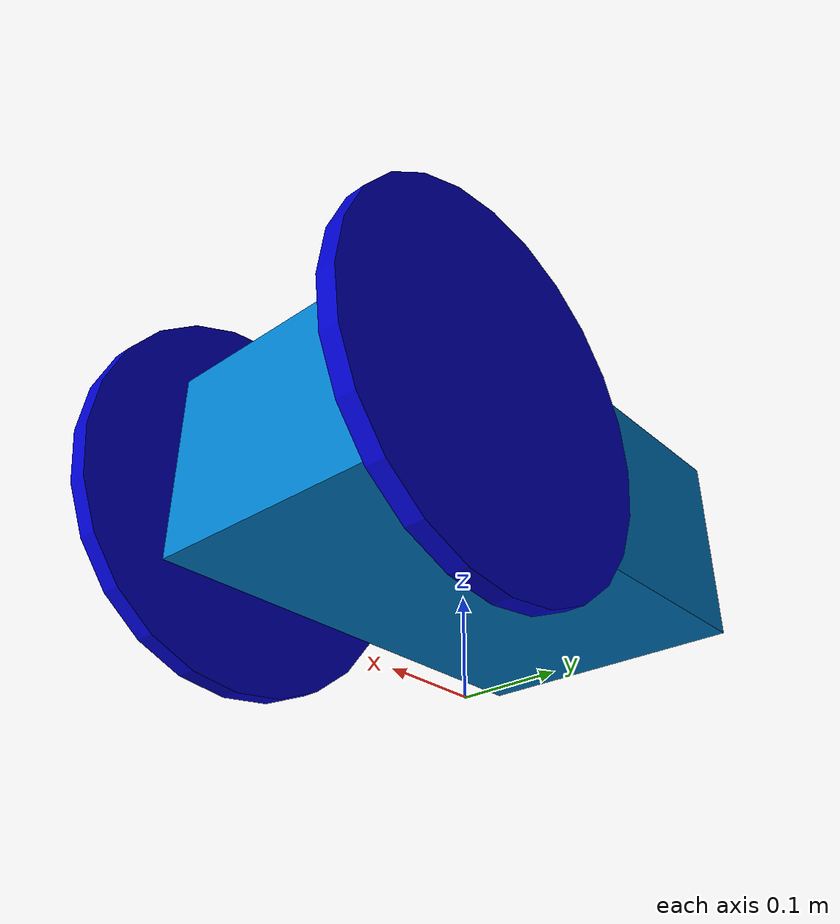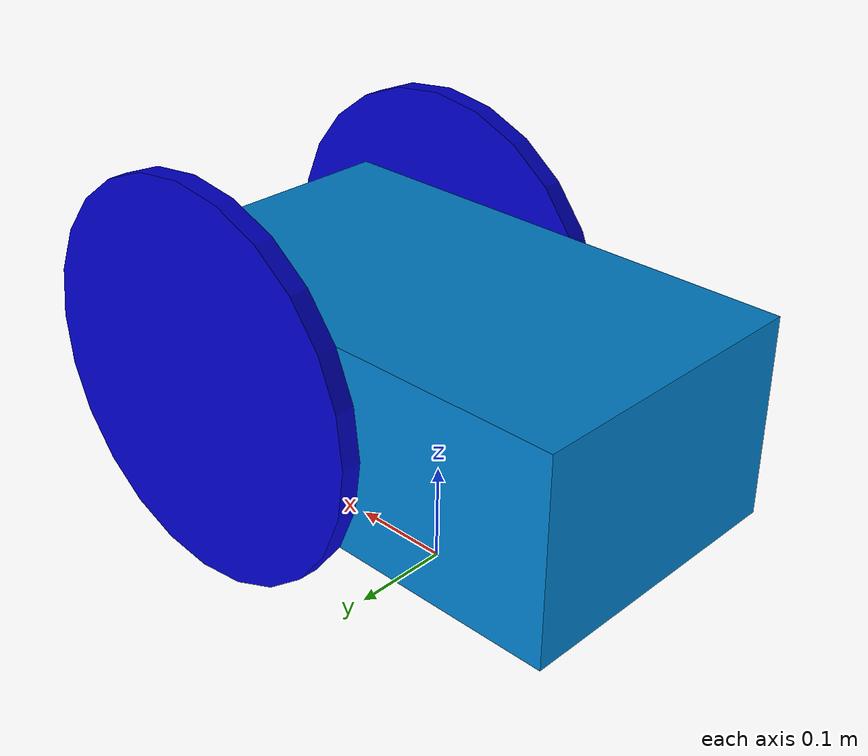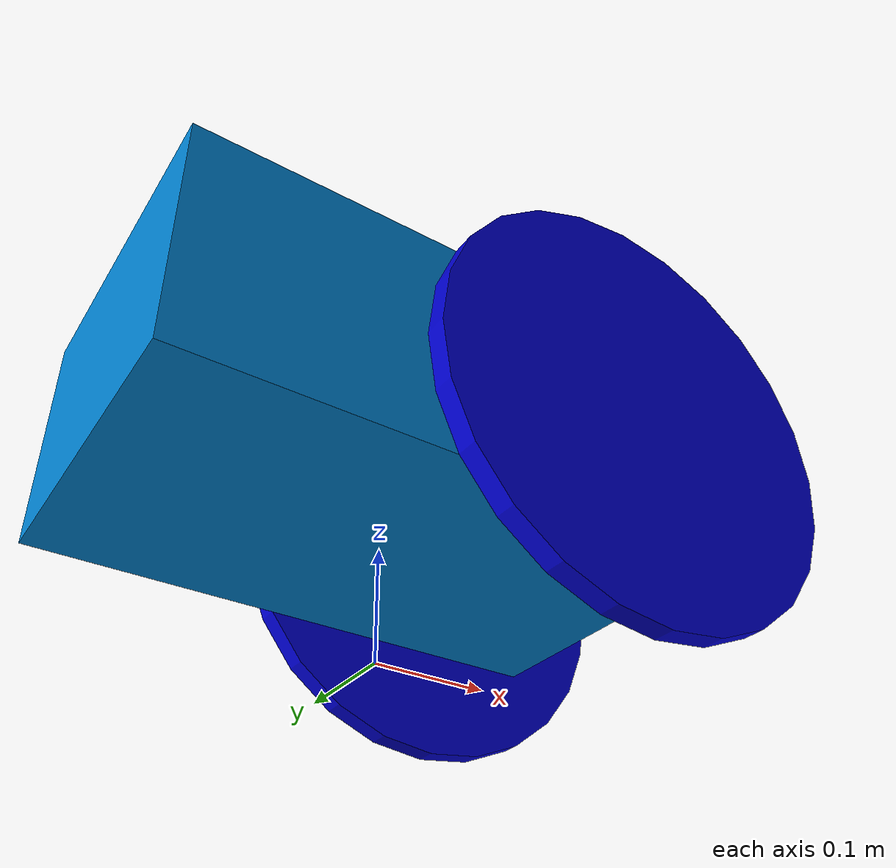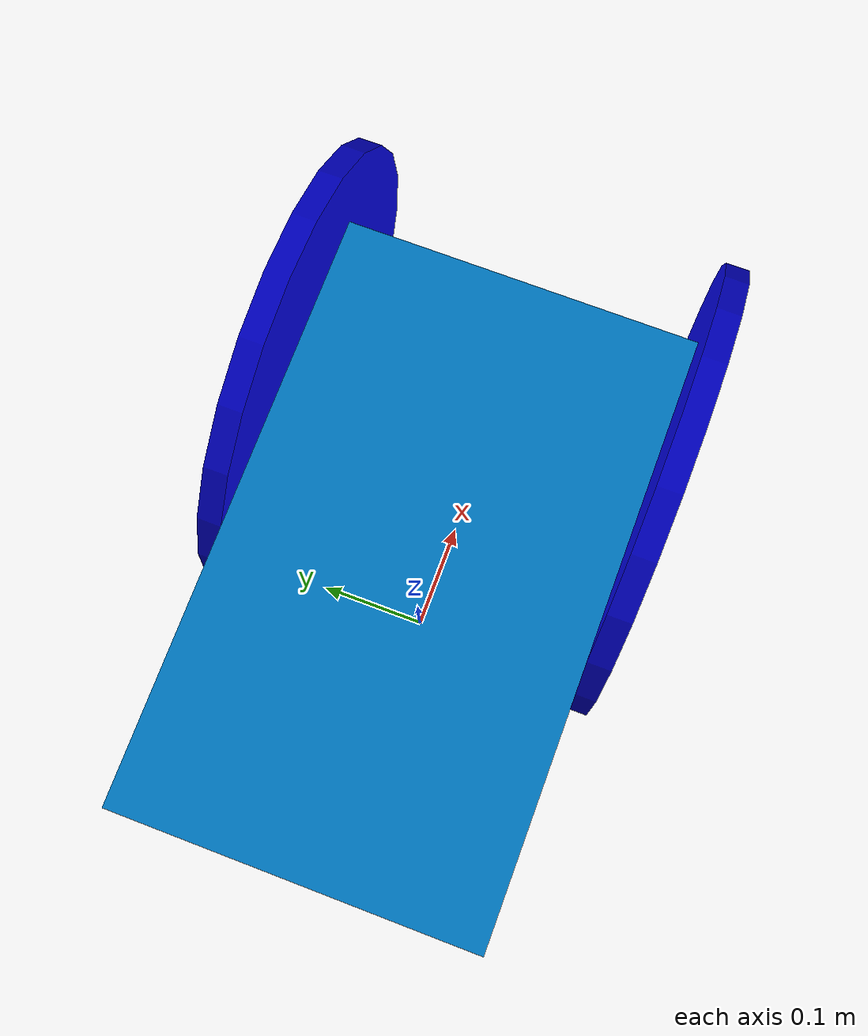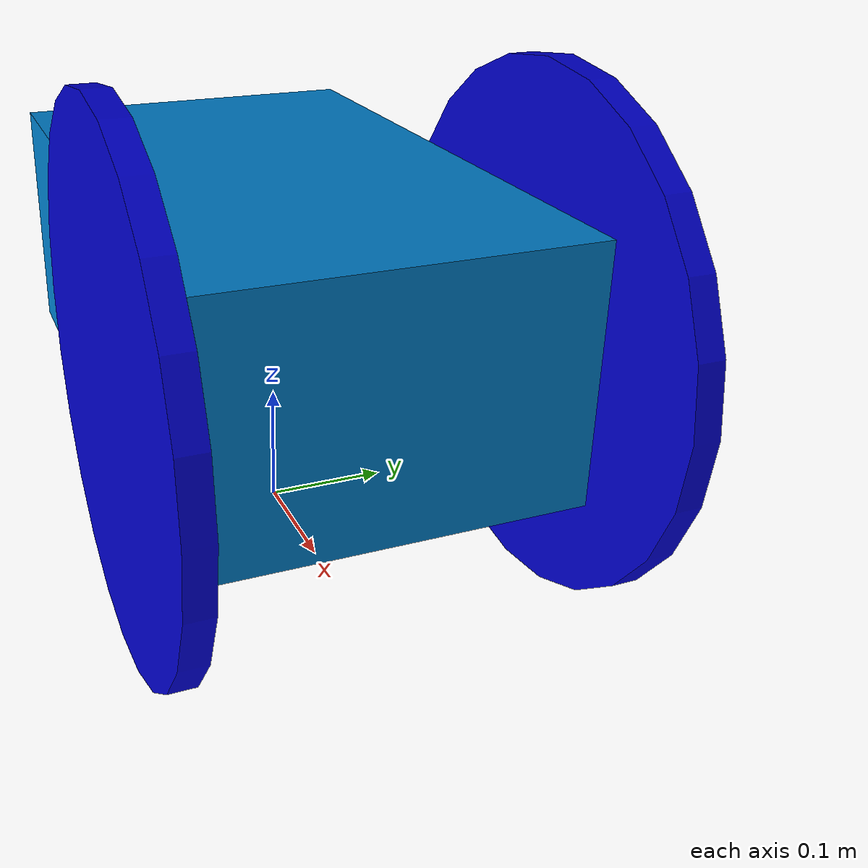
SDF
<?xml version="1.0"?>
<sdf version="1.7">
  <model name="turtlebot">
    <!-- Static property -->
    <static>false</static>

    <!-- Links -->
    <link name="chassis">
      <pose>0 0 0.2 0 0 0</pose> <!-- Raise the chassis above the wheels -->
      <visual name="chassis_visual">
        <geometry>
          <box>
            <size>0.5 0.3 0.2</size>
          </box>
        </geometry>
        <material>
          <ambient>0.0 0.5 0.8 1</ambient>
        </material>
      </visual>
      <collision name="chassis_collision">
        <geometry>
          <box>
            <size>0.5 0.3 0.2</size>
          </box>
        </geometry>
      </collision>
      <inertial>
        <mass>3.0</mass>
      </inertial>
    </link>

    <!-- Add wheels with proper joints -->
    <link name="left_wheel">
      <pose>0.15 0.16 0.2 1.5708 0 0</pose> <!-- x,y,z, roll, pitch, yaw -->
      <visual name="left_wheel_visual">
        <geometry>
          <cylinder>
            <radius>0.2</radius>
            <length>0.02</length>
          </cylinder>
        </geometry>
        <material>
          <ambient>0.0 0.0 0.8 1</ambient>
        </material>
      </visual>
      <collision name="left_wheel_collision">
        <geometry>
          <cylinder>
            <radius>0.2</radius>
            <length>0.02</length>
          </cylinder>
        </geometry>
      </collision>
      <inertial>
        <mass>0.5</mass>
      </inertial>
    </link>

    <link name="right_wheel">
      <pose>0.15 -0.16 0.2 1.5708 0 0</pose> <!-- Mirror position for the right wheel -->
      <visual name="right_wheel_visual">
        <geometry>
          <cylinder>
            <radius>0.2</radius>
            <length>0.02</length>
          </cylinder>
        </geometry>
        <material>
          <ambient>0.0 0.0 0.8 1</ambient>
        </material>
      </visual>
      <collision name="right_wheel_collision">
        <geometry>
          <cylinder>
            <radius>0.2</radius>
            <length>0.02</length>
          </cylinder>
        </geometry>
      </collision>
      <inertial>
        <mass>0.5</mass>
      </inertial>
    </link>
    <!-- Joints -->
    <joint name="left_wheel_joint" type="revolute">
      <parent>chassis</parent>
      <child>left_wheel</child>
      <pose>0.15 0.16 0.2 1.5708 0 0</pose> <!-- Match left wheel pose -->
      <axis>
        <xyz>0 1 0</xyz>
      </axis>
      <limit>
        <lower>-1e16</lower>
        <upper>1e16</upper>
      </limit>
    </joint>
    <joint name="right_wheel_joint" type="revolute">
      <parent>chassis</parent>
      <child>right_wheel</child>
      <pose>0.15 -0.16 0.2 1.5708 0 0</pose> <!-- Match right wheel pose -->
      <axis>
        <xyz>0 1 0</xyz>
      </axis>
      <limit>
        <lower>-1e16</lower>
        <upper>1e16</upper>
      </limit>
    </joint>

    <!-- Add Differential Drive Plugin -->
    <plugin name="gz::sim::systems::DiffDrive" filename="libgz-sim8-diff-drive-system.so">
      <left_joint>left_wheel_joint</left_joint>
      <right_joint>right_wheel_joint</right_joint>
      <wheel_separation>0.32</wheel_separation> <!-- Adjust based on your model -->
      <wheel_radius>0.2</wheel_radius> <!-- Adjust based on your model -->
      <odom_publish_frequency>1</odom_publish_frequency>
      <cmd_vel_topic>/cmd_vel</cmd_vel_topic>
    </plugin>
  </model>
</sdf>
